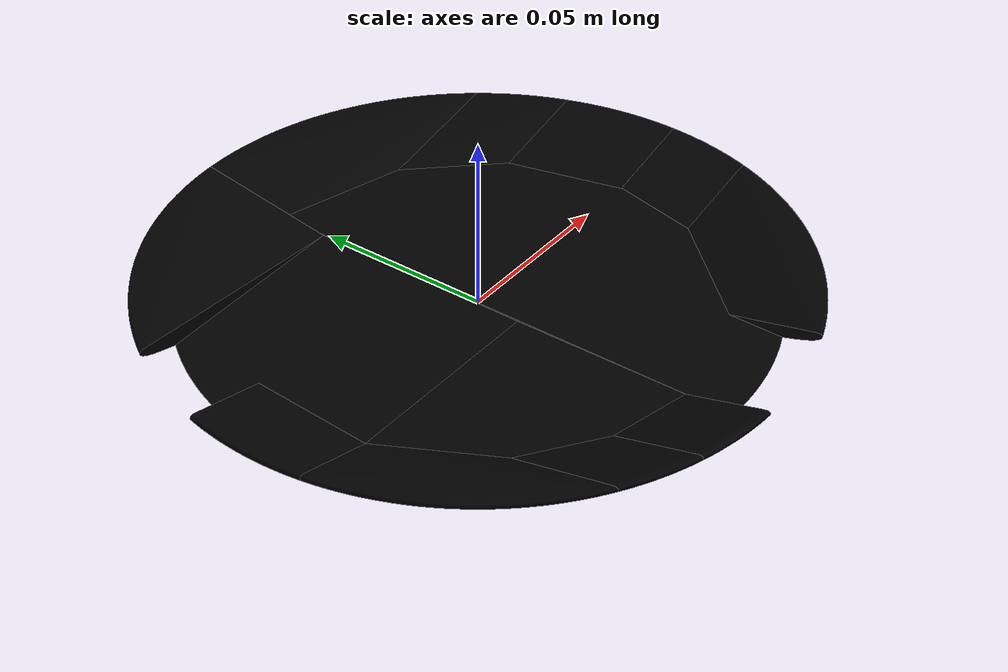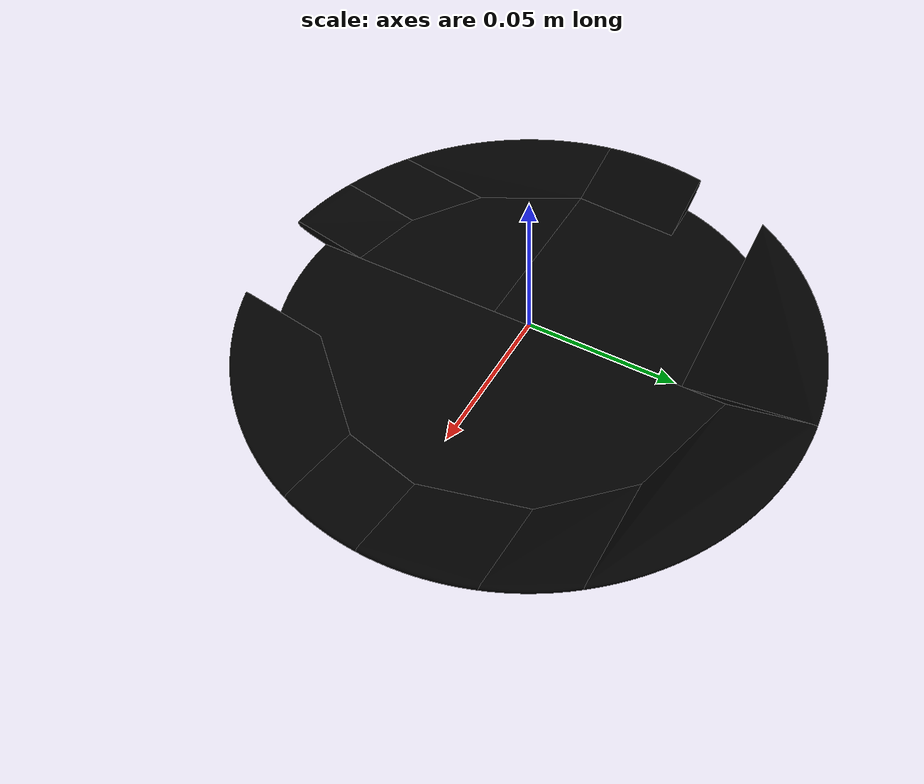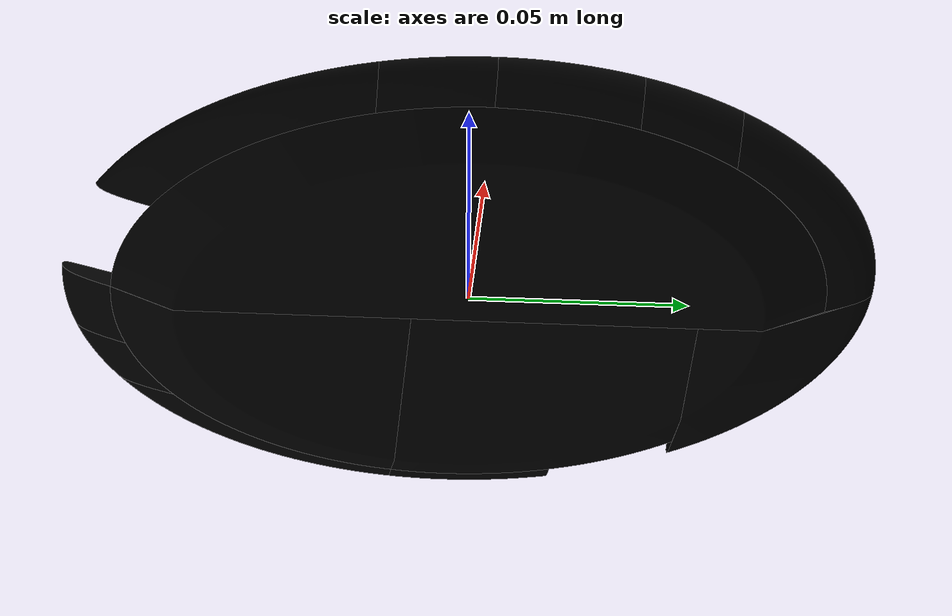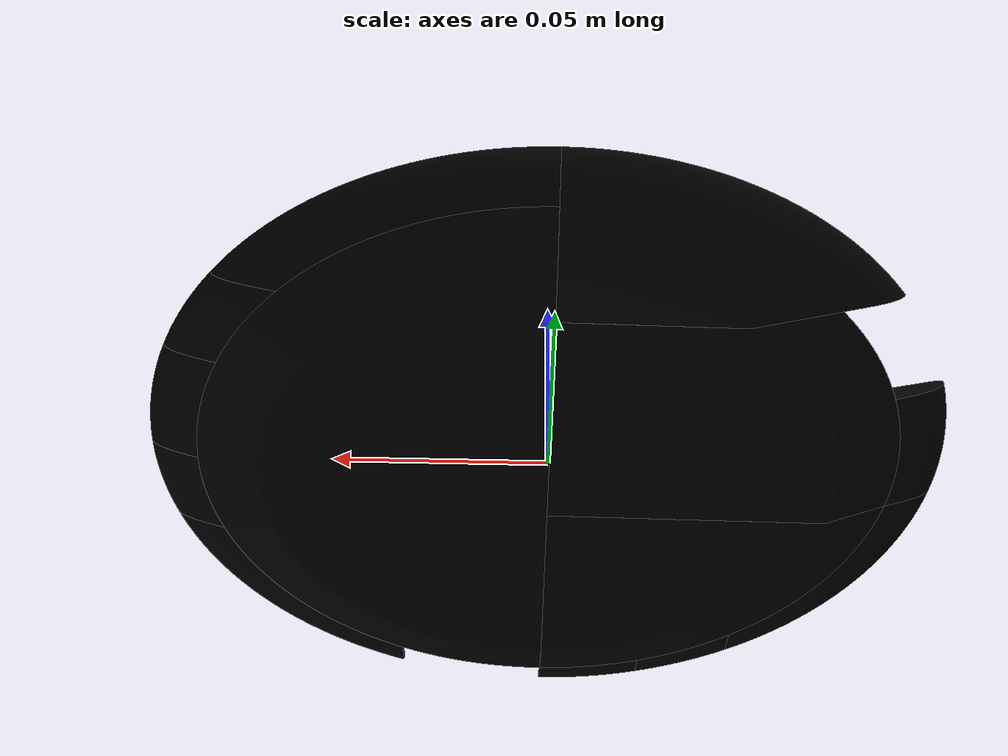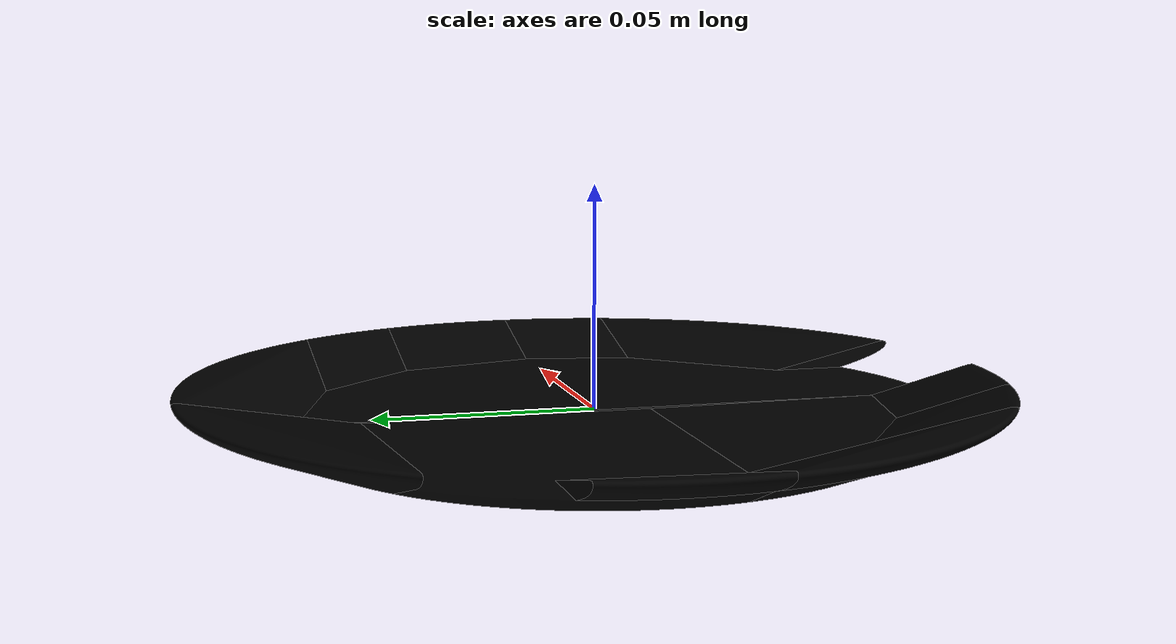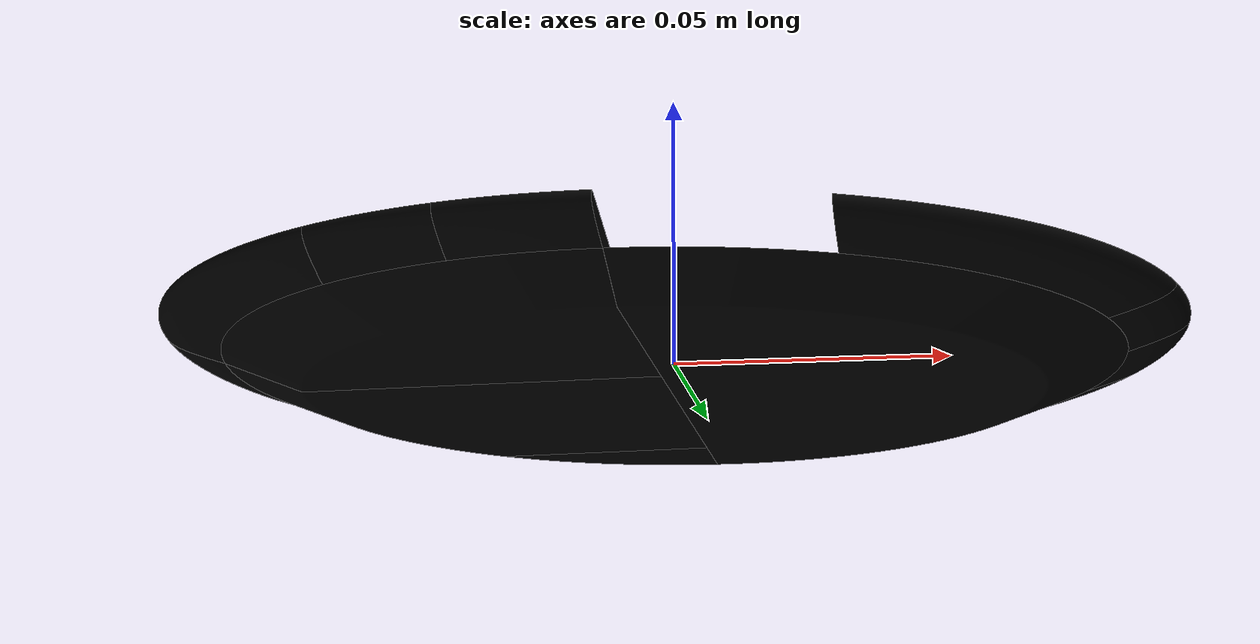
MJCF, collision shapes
<mujoco model="plate_54">
  <asset>
    <mesh file="visual/model_normalized_0.obj" name="model_normalized_0_vis" scale="0.185 0.185 0.185" refquat="1.0 0.0 0.0 0.0" />
    <material name="Material.392" specular="0.5" shininess="0.359999993" rgba="0.800000 0.800000 0.800000 1.0" />
    <mesh file="collision/model_collision_0.obj" name="model_collision_0" scale="0.185 0.185 0.185" refquat="1.0 0.0 0.0 0.0" />
    <mesh file="collision/model_collision_1.obj" name="model_collision_1" scale="0.185 0.185 0.185" refquat="1.0 0.0 0.0 0.0" />
    <mesh file="collision/model_collision_2.obj" name="model_collision_2" scale="0.185 0.185 0.185" refquat="1.0 0.0 0.0 0.0" />
    <mesh file="collision/model_collision_3.obj" name="model_collision_3" scale="0.185 0.185 0.185" refquat="1.0 0.0 0.0 0.0" />
    <mesh file="collision/model_collision_4.obj" name="model_collision_4" scale="0.185 0.185 0.185" refquat="1.0 0.0 0.0 0.0" />
    <mesh file="collision/model_collision_5.obj" name="model_collision_5" scale="0.185 0.185 0.185" refquat="1.0 0.0 0.0 0.0" />
    <mesh file="collision/model_collision_6.obj" name="model_collision_6" scale="0.185 0.185 0.185" refquat="1.0 0.0 0.0 0.0" />
    <mesh file="collision/model_collision_7.obj" name="model_collision_7" scale="0.185 0.185 0.185" refquat="1.0 0.0 0.0 0.0" />
    <mesh file="collision/model_collision_8.obj" name="model_collision_8" scale="0.185 0.185 0.185" refquat="1.0 0.0 0.0 0.0" />
    <mesh file="collision/model_collision_9.obj" name="model_collision_9" scale="0.185 0.185 0.185" refquat="1.0 0.0 0.0 0.0" />
    <mesh file="collision/model_collision_10.obj" name="model_collision_10" scale="0.185 0.185 0.185" refquat="1.0 0.0 0.0 0.0" />
    <mesh file="collision/model_collision_11.obj" name="model_collision_11" scale="0.185 0.185 0.185" refquat="1.0 0.0 0.0 0.0" />
    <mesh file="collision/model_collision_12.obj" name="model_collision_12" scale="0.185 0.185 0.185" refquat="1.0 0.0 0.0 0.0" />
  </asset>
  <default>
    <default class="region">
      <geom group="1" conaffinity="0" contype="0" rgba="0 1 0 0" />
    </default>
  </default>
  <worldbody>
    <body>
      <body name="object">
        <geom density="0" type="mesh" mesh="model_normalized_0_vis" conaffinity="0" contype="0" group="2" material="Material.392" mass="0.075" />
        <geom class="region" name="reg_bbox" type="box" pos="-0.0002503327499999995 9.249999995131208e-10 -9.250000000335379e-09" size="0.09091674964999999 0.0909167663 0.005545608099999999" />
        <geom solimp="0.998 0.998 0.001" solref="0.004 1" density="0" friction="0.6 0.03 0.003" type="mesh" group="3" rgba="0 0 0 0" mesh="model_collision_0" condim="6" priority="1" />
        <geom solimp="0.998 0.998 0.001" solref="0.004 1" density="0" friction="0.6 0.03 0.003" type="mesh" group="3" rgba="0 0 0 0" mesh="model_collision_1" condim="6" priority="1" />
        <geom solimp="0.998 0.998 0.001" solref="0.004 1" density="0" friction="0.6 0.03 0.003" type="mesh" group="3" rgba="0 0 0 0" mesh="model_collision_2" condim="6" priority="1" />
        <geom solimp="0.998 0.998 0.001" solref="0.004 1" density="0" friction="0.6 0.03 0.003" type="mesh" group="3" rgba="0 0 0 0" mesh="model_collision_3" condim="6" priority="1" />
        <geom solimp="0.998 0.998 0.001" solref="0.004 1" density="0" friction="0.6 0.03 0.003" type="mesh" group="3" rgba="0 0 0 0" mesh="model_collision_4" condim="6" priority="1" />
        <geom solimp="0.998 0.998 0.001" solref="0.004 1" density="0" friction="0.6 0.03 0.003" type="mesh" group="3" rgba="0 0 0 0" mesh="model_collision_5" condim="6" priority="1" />
        <geom solimp="0.998 0.998 0.001" solref="0.004 1" density="0" friction="0.6 0.03 0.003" type="mesh" group="3" rgba="0 0 0 0" mesh="model_collision_6" condim="6" priority="1" />
        <geom solimp="0.998 0.998 0.001" solref="0.004 1" density="0" friction="0.6 0.03 0.003" type="mesh" group="3" rgba="0 0 0 0" mesh="model_collision_7" condim="6" priority="1" />
        <geom solimp="0.998 0.998 0.001" solref="0.004 1" density="0" friction="0.6 0.03 0.003" type="mesh" group="3" rgba="0 0 0 0" mesh="model_collision_8" condim="6" priority="1" />
        <geom solimp="0.998 0.998 0.001" solref="0.004 1" density="0" friction="0.6 0.03 0.003" type="mesh" group="3" rgba="0 0 0 0" mesh="model_collision_9" condim="6" priority="1" />
        <geom solimp="0.998 0.998 0.001" solref="0.004 1" density="0" friction="0.6 0.03 0.003" type="mesh" group="3" rgba="0 0 0 0" mesh="model_collision_10" condim="6" priority="1" />
        <geom solimp="0.998 0.998 0.001" solref="0.004 1" density="0" friction="0.6 0.03 0.003" type="mesh" group="3" rgba="0 0 0 0" mesh="model_collision_11" condim="6" priority="1" />
        <geom solimp="0.998 0.998 0.001" solref="0.004 1" density="0" friction="0.6 0.03 0.003" type="mesh" group="3" rgba="0 0 0 0" mesh="model_collision_12" condim="6" priority="1" />
      </body>
    </body>
  </worldbody>
</mujoco>
